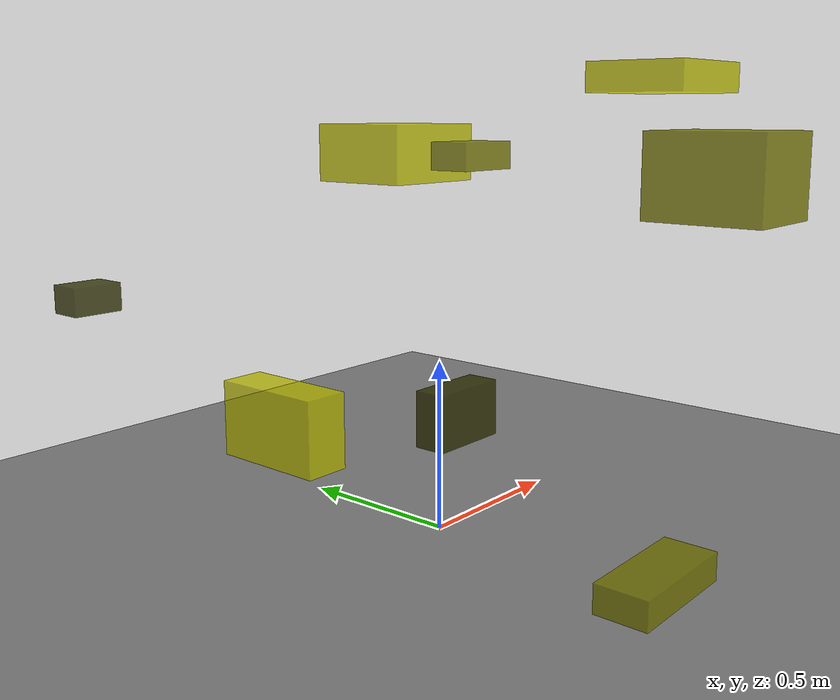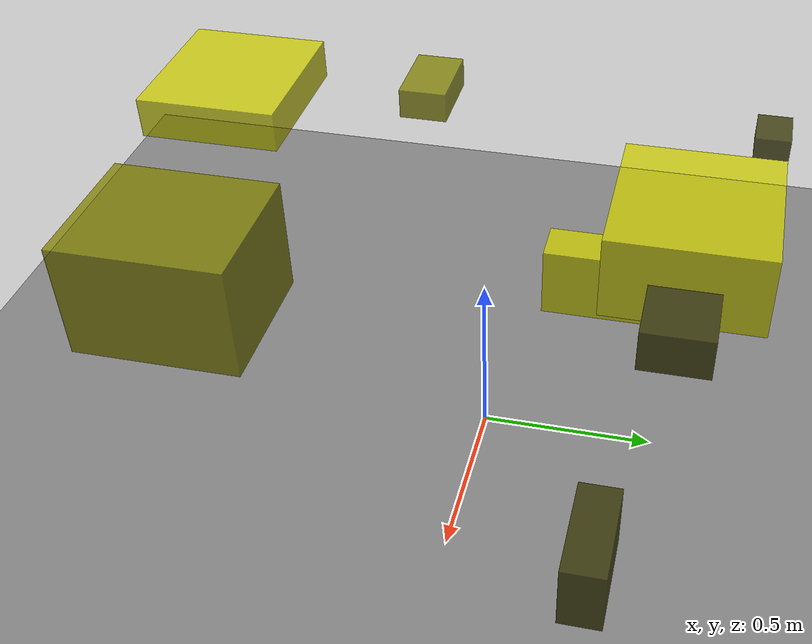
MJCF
<?xml version="1.0"?>
<mujoco model="obstacle_scene">
  <compiler angle="radian" coordinate="local"/>
  <option timestep="0.001" gravity="0 0 -9.81"/>

  <asset>
    <material name="obstacle_mat" rgba="0.8 0.8 0.0 0.8"/>
    <material name="ground_mat" rgba="0.5 0.5 0.5 1"/>
  </asset>

  <worldbody>
    <!-- Ground plane -->
    <geom name="ground" type="plane" size="3 3 0.1" material="ground_mat"/>

    <!-- Obstacles -->
    <body name="obstacle_0" pos="0.577129 0.404263 0.140737">
      <geom name="obs_0" type="box" size="0.151314 0.059963 0.102031" rgba="0.2 0.2 0.0 0.8"/>
    </body>
    <body name="obstacle_1" pos="-0.308237 -0.868181 0.205995">
      <geom name="obs_1" type="box" size="0.154883 0.065173 0.034523" rgba="0.5 0.5 0.0 0.8"/>
    </body>
    <body name="obstacle_2" pos="0.417335 -0.453118 1.295675">
      <geom name="obs_2" type="box" size="0.164773 0.147210 0.041993" rgba="0.8 0.8 0.0 0.8"/>
    </body>
    <body name="obstacle_3" pos="-0.648399 0.737661 0.690416">
      <geom name="obs_3" type="box" size="0.071483 0.051621 0.039999" rgba="0.2 0.2 0.0 0.8"/>
    </body>
    <body name="obstacle_4" pos="-0.036468 -0.140310 1.088803">
      <geom name="obs_4" type="box" size="0.095110 0.058405 0.036693" rgba="0.5 0.5 0.0 0.8"/>
    </body>
    <body name="obstacle_5" pos="-0.334384 0.292460 0.338067">
      <geom name="obs_5" type="box" size="0.065926 0.174956 0.109490" rgba="0.8 0.8 0.0 0.8"/>
    </body>
    <body name="obstacle_6" pos="0.729435 0.556664 1.043086">
      <geom name="obs_6" type="box" size="0.075571 0.074893 0.047116" rgba="0.2 0.2 0.0 0.8"/>
    </body>
    <body name="obstacle_7" pos="0.707494 -0.516552 1.013952">
      <geom name="obs_7" type="box" size="0.164243 0.190604 0.133976" rgba="0.5 0.5 0.0 0.8"/>
    </body>
    <body name="obstacle_8" pos="0.433456 0.556831 1.065512">
      <geom name="obs_8" type="box" size="0.188460 0.176945 0.095751" rgba="0.8 0.8 0.0 0.8"/>
    </body>
  </worldbody>
</mujoco>
